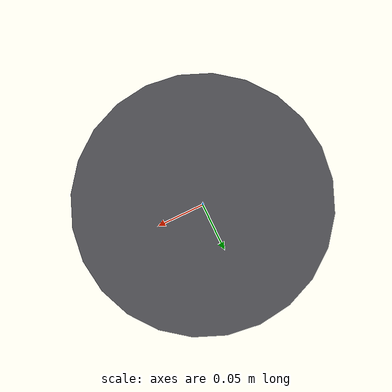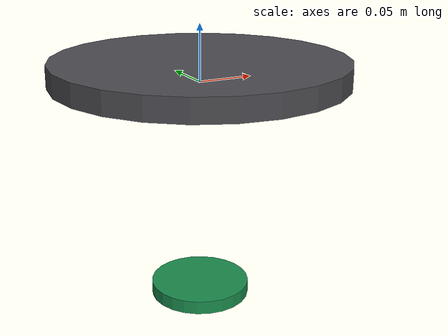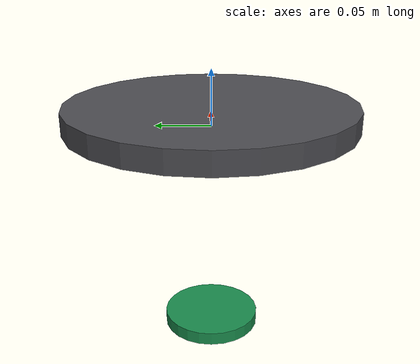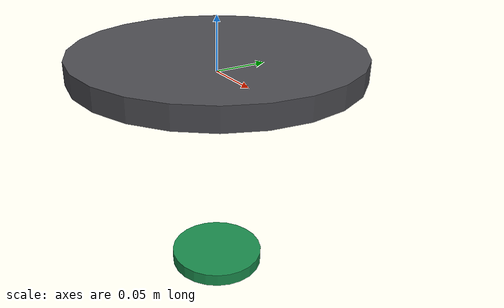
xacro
<?xml version="1.0"?>
<robot name="delta_arm_endpoint" xmlns:xacro="http://www.ros.org/wiki/xacro">

  <!-- tool0 hangs this far below base_link (≈ the real arm's platform at
       rest / payload reach underneath the drone). -->
  <xacro:property name="tool_drop" value="0.20"/>

  <!-- Root link. No `world` link: base_link is welded straight onto the
       drone by mount_welder.py, so it must be the payload's single root. -->
  <link name="base_link">
    <visual>
      <origin xyz="0 0 0.010" rpy="0 0 0"/>
      <geometry>
        <cylinder radius="0.130" length="0.020"/>
      </geometry>
      <material name="base_mat">
        <color rgba="0.30 0.30 0.32 1.0"/>
      </material>
    </visual>
    <inertial>
      <mass value="1.0"/>
      <origin xyz="0 0 0.010" rpy="0 0 0"/>
      <inertia ixx="3.633e-3" ixy="0" ixz="0" iyy="3.633e-3" iyz="0" izz="7.2e-3"/>
    </inertial>
  </link>

  <!-- The endpoint: a rigid platform hanging ${tool_drop} below the base,
       representing the delta arm's payload-carrying point. -->
  <link name="tool0">
    <visual>
      <origin xyz="0 0 0.005" rpy="0 0 0"/>
      <geometry>
        <cylinder radius="0.045" length="0.012"/>
      </geometry>
      <material name="plat_mat">
        <color rgba="0.10 0.55 0.30 1.0"/>
      </material>
    </visual>
    <inertial>
      <mass value="0.15"/>
      <origin xyz="0 0 0.006" rpy="0 0 0"/>
      <inertia ixx="8.5e-5" ixy="0" ixz="0" iyy="8.5e-5" iyz="0" izz="1.6e-4"/>
    </inertial>
  </link>
  <joint name="tool0_joint" type="fixed">
    <origin xyz="0 0 -${tool_drop}" rpy="0 0 0"/>
    <parent link="base_link"/>
    <child link="tool0"/>
  </joint>

</robot>
